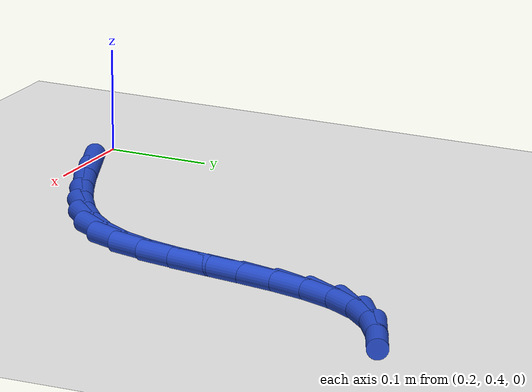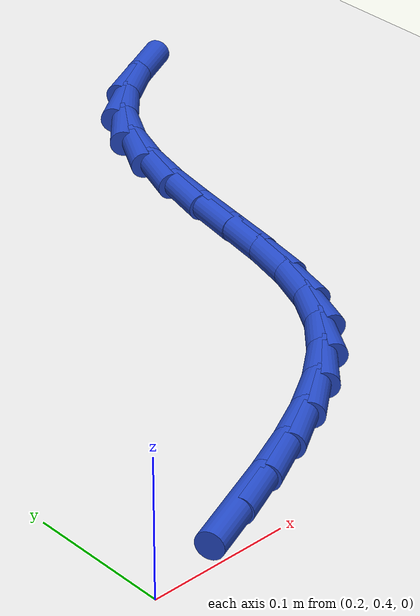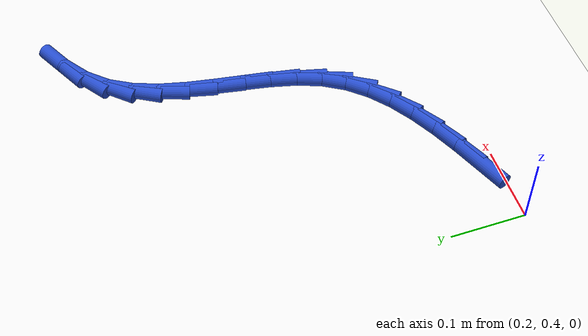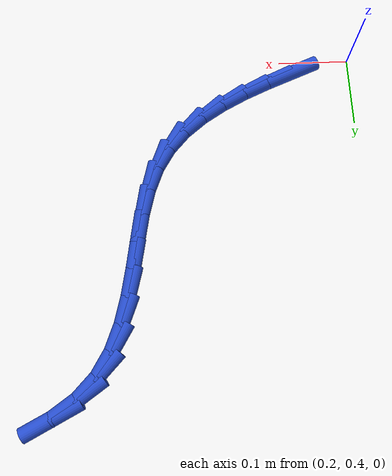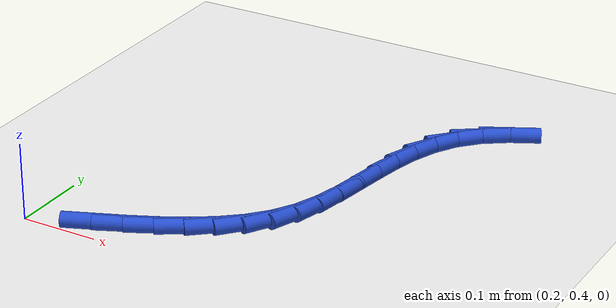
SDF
<sdf version="1.6">
 <world name="default">
  <model name="ground_plane">
   <static>1</static>
   <link name="link">
    <collision name="collision">
     <geometry><plane><normal>0 0 1</normal><size>100 100</size></plane></geometry>
     <surface><friction><ode><mu>100</mu><mu2>50</mu2></ode></friction></surface>
    </collision>
    <visual name="visual">
     <cast_shadows>0</cast_shadows>
     <geometry><plane><normal>0 0 1</normal><size>100 100</size></plane></geometry>
     <material>
      <script><uri>file://media/materials/scripts/gazebo.material</uri><name>Gazebo/WhiteGlow</name></script>
     </material>
    </visual>
   </link>
  </model>
  <model name="line">
   <link name="link_16">
    <pose>0.2853574518088786 0.4217938302714603 0.01 0 1.57 0.3900449206784528</pose>
    <collision name="collision">
     <geometry><cylinder><radius>0.01</radius><length>0.08</length></cylinder></geometry>
    </collision>
    <visual name="visual">
     <material>
      <script><name>Gazebo/Blue</name><uri>file://media/materials/scripts/gazebo.material</uri></script>
     </material>
     <geometry><cylinder><radius>0.01</radius><length>0.08</length></cylinder></geometry>
    </visual>
   </link>
   <link name="link_17">
    <pose>0.3208192159815742 0.43637242489291383 0.01 0 1.57 0.427653351015577</pose>
    <collision name="collision">
     <geometry><cylinder><radius>0.01</radius><length>0.08</length></cylinder></geometry>
    </collision>
    <visual name="visual">
     <material>
      <script><name>Gazebo/Blue</name><uri>file://media/materials/scripts/gazebo.material</uri></script>
     </material>
     <geometry><cylinder><radius>0.01</radius><length>0.08</length></cylinder></geometry>
    </visual>
   </link>
   <link name="link_18">
    <pose>0.3549640567232828 0.45193509167388723 0.01 0 1.57 0.48814858374382647</pose>
    <collision name="collision">
     <geometry><cylinder><radius>0.01</radius><length>0.08</length></cylinder></geometry>
    </collision>
    <visual name="visual">
     <material>
      <script><name>Gazebo/Blue</name><uri>file://media/materials/scripts/gazebo.material</uri></script>
     </material>
     <geometry><cylinder><radius>0.01</radius><length>0.08</length></cylinder></geometry>
    </visual>
   </link>
   <link name="link_19">
    <pose>0.3870875841354083 0.4689930811504088 0.01 0 1.57 0.5753217815755468</pose>
    <collision name="collision">
     <geometry><cylinder><radius>0.01</radius><length>0.08</length></cylinder></geometry>
    </collision>
    <visual name="visual">
     <material>
      <script><name>Gazebo/Blue</name><uri>file://media/materials/scripts/gazebo.material</uri></script>
     </material>
     <geometry><cylinder><radius>0.01</radius><length>0.08</length></cylinder></geometry>
    </visual>
   </link>
   <link name="link_20">
    <pose>0.41648540831935466 0.4880576438585068 0.01 0 1.57 0.6934325791270846</pose>
    <collision name="collision">
     <geometry><cylinder><radius>0.01</radius><length>0.08</length></cylinder></geometry>
    </collision>
    <visual name="visual">
     <material>
      <script><name>Gazebo/Blue</name><uri>file://media/materials/scripts/gazebo.material</uri></script>
     </material>
     <geometry><cylinder><radius>0.01</radius><length>0.08</length></cylinder></geometry>
    </visual>
   </link>
   <link name="link_21">
    <pose>0.44245313937652575 0.5096400303342095 0.01 0 1.57 0.8451446080196746</pose>
    <collision name="collision">
     <geometry><cylinder><radius>0.01</radius><length>0.08</length></cylinder></geometry>
    </collision>
    <visual name="visual">
     <material>
      <script><name>Gazebo/Blue</name><uri>file://media/materials/scripts/gazebo.material</uri></script>
     </material>
     <geometry><cylinder><radius>0.01</radius><length>0.08</length></cylinder></geometry>
    </visual>
   </link>
   <link name="link_22">
    <pose>0.4642863874083254 0.5342514911135454 0.01 0 1.57 1.0274688767504392</pose>
    <collision name="collision">
     <geometry><cylinder><radius>0.01</radius><length>0.08</length></cylinder></geometry>
    </collision>
    <visual name="visual">
     <material>
      <script><name>Gazebo/Blue</name><uri>file://media/materials/scripts/gazebo.material</uri></script>
     </material>
     <geometry><cylinder><radius>0.01</radius><length>0.08</length></cylinder></geometry>
    </visual>
   </link>
   <link name="link_23">
    <pose>0.4812865397188464 0.5623992218726417 0.01 0 1.57 1.2050323884709566</pose>
    <collision name="collision">
     <geometry><cylinder><radius>0.01</radius><length>0.08</length></cylinder></geometry>
    </collision>
    <visual name="visual">
     <material>
      <script><name>Gazebo/Blue</name><uri>file://media/materials/scripts/gazebo.material</uri></script>
     </material>
     <geometry><cylinder><radius>0.01</radius><length>0.08</length></cylinder></geometry>
    </visual>
   </link>
   <link name="link_24">
    <pose>0.49343334342494405 0.5941142961655922 0.01 0 1.57 1.3263492876451688</pose>
    <collision name="collision">
     <geometry><cylinder><radius>0.01</radius><length>0.08</length></cylinder></geometry>
    </collision>
    <visual name="visual">
     <material>
      <script><name>Gazebo/Blue</name><uri>file://media/materials/scripts/gazebo.material</uri></script>
     </material>
     <geometry><cylinder><radius>0.01</radius><length>0.08</length></cylinder></geometry>
    </visual>
   </link>
   <link name="link_25">
    <pose>0.5020130415698378 0.6285107939375185 0.01 0 1.57 1.3940018542698362</pose>
    <collision name="collision">
     <geometry><cylinder><radius>0.01</radius><length>0.08</length></cylinder></geometry>
    </collision>
    <visual name="visual">
     <material>
      <script><name>Gazebo/Blue</name><uri>file://media/materials/scripts/gazebo.material</uri></script>
     </material>
     <geometry><cylinder><radius>0.01</radius><length>0.08</length></cylinder></geometry>
    </visual>
   </link>
   <link name="link_26">
    <pose>0.5084604641471484 0.6645985060338632 0.01 0 1.57 1.4157534171334576</pose>
    <collision name="collision">
     <geometry><cylinder><radius>0.01</radius><length>0.08</length></cylinder></geometry>
    </collision>
    <visual name="visual">
     <material>
      <script><name>Gazebo/Blue</name><uri>file://media/materials/scripts/gazebo.material</uri></script>
     </material>
     <geometry><cylinder><radius>0.01</radius><length>0.08</length></cylinder></geometry>
    </visual>
   </link>
   <link name="link_27">
    <pose>0.5142104411504966 0.7013872233000685 0.01 0 1.57 1.3948949704035905</pose>
    <collision name="collision">
     <geometry><cylinder><radius>0.01</radius><length>0.08</length></cylinder></geometry>
    </collision>
    <visual name="visual">
     <material>
      <script><name>Gazebo/Blue</name><uri>file://media/materials/scripts/gazebo.material</uri></script>
     </material>
     <geometry><cylinder><radius>0.01</radius><length>0.08</length></cylinder></geometry>
    </visual>
   </link>
   <link name="link_28">
    <pose>0.5206978025735035 0.737886736581577 0.01 0 1.57 1.3297082210671192</pose>
    <collision name="collision">
     <geometry><cylinder><radius>0.01</radius><length>0.08</length></cylinder></geometry>
    </collision>
    <visual name="visual">
     <material>
      <script><name>Gazebo/Blue</name><uri>file://media/materials/scripts/gazebo.material</uri></script>
     </material>
     <geometry><cylinder><radius>0.01</radius><length>0.08</length></cylinder></geometry>
    </visual>
   </link>
   <link name="link_29">
    <pose>0.5293573784097897 0.7731068367238311 0.01 0 1.57 1.2144173390147066</pose>
    <collision name="collision">
     <geometry><cylinder><radius>0.01</radius><length>0.08</length></cylinder></geometry>
    </collision>
    <visual name="visual">
     <material>
      <script><name>Gazebo/Blue</name><uri>file://media/materials/scripts/gazebo.material</uri></script>
     </material>
     <geometry><cylinder><radius>0.01</radius><length>0.08</length></cylinder></geometry>
    </visual>
   </link>
   <link name="link_30">
    <pose>0.5416239986529761 0.8060573145722731 0.01 0 1.57 1.0429995825151954</pose>
    <collision name="collision">
     <geometry><cylinder><radius>0.01</radius><length>0.08</length></cylinder></geometry>
    </collision>
    <visual name="visual">
     <material>
      <script><name>Gazebo/Blue</name><uri>file://media/materials/scripts/gazebo.material</uri></script>
     </material>
     <geometry><cylinder><radius>0.01</radius><length>0.08</length></cylinder></geometry>
    </visual>
   </link>
   <link name="link_31">
    <pose>0.5589324932966835 0.8357479609723459 0.01 0 1.57 0.8199587072185819</pose>
    <collision name="collision">
     <geometry><cylinder><radius>0.01</radius><length>0.08</length></cylinder></geometry>
    </collision>
    <visual name="visual">
     <material>
      <script><name>Gazebo/Blue</name><uri>file://media/materials/scripts/gazebo.material</uri></script>
     </material>
     <geometry><cylinder><radius>0.01</radius><length>0.08</length></cylinder></geometry>
    </visual>
   </link>
   <link name="link_32">
    <pose>0.5826893421267202 0.8612063942453018 0.01 0 1.57 0.6083904212454403</pose>
    <collision name="collision">
     <geometry><cylinder><radius>0.01</radius><length>0.08</length></cylinder></geometry>
    </collision>
    <visual name="visual">
     <material>
      <script><name>Gazebo/Blue</name><uri>file://media/materials/scripts/gazebo.material</uri></script>
     </material>
     <geometry><cylinder><radius>0.01</radius><length>0.08</length></cylinder></geometry>
    </visual>
   </link>
   <link name="link_33">
    <pose>0.6129696760879733 0.8822974254911249 0.01 0 1.57 0.469702103577251</pose>
    <collision name="collision">
     <geometry><cylinder><radius>0.01</radius><length>0.08</length></cylinder></geometry>
    </collision>
    <visual name="visual">
     <material>
      <script><name>Gazebo/Blue</name><uri>file://media/materials/scripts/gazebo.material</uri></script>
     </material>
     <geometry><cylinder><radius>0.01</radius><length>0.08</length></cylinder></geometry>
    </visual>
   </link>
  </model>
 </world>
</sdf>
